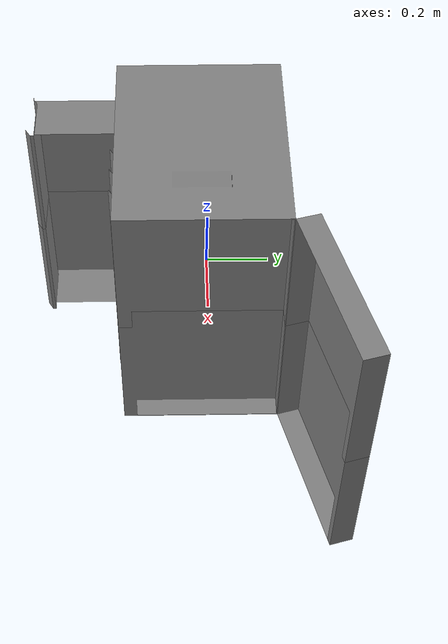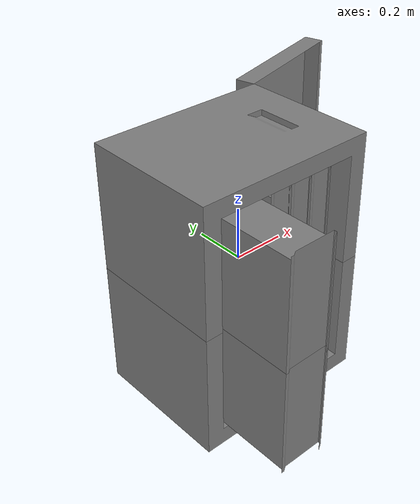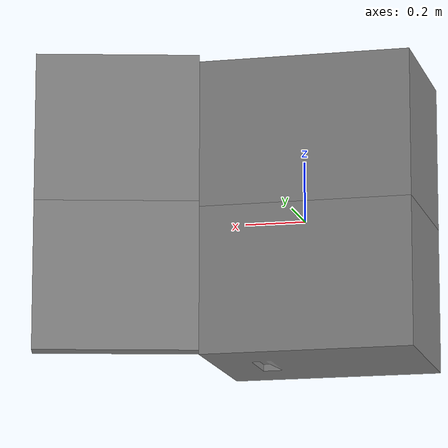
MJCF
<mujoco model="partnet_3317da004c4177a5f47e82e63eafd5bc-0">
    <!-- Compiler Options -->
    <compiler angle="radian" coordinate="local" />

    <!-- Simulation Options -->
    <option gravity="0 0 -9.81" />

    <!-- Asset Definitions -->
    <asset>
        <!-- Mesh Assets -->
        <mesh name="textured_objs_original_11" file="original-11.obj" />
        <mesh name="textured_objs_original_12" file="original-12.obj" />
        <mesh name="textured_objs_original_14" file="original-14.obj" />
        <mesh name="textured_objs_original_15" file="original-15.obj" />
        <mesh name="textured_objs_original_17" file="original-17.obj" />
        <mesh name="textured_objs_original_18" file="original-18.obj" />
        <mesh name="textured_objs_original_2" file="original-2.obj" />
        <mesh name="textured_objs_original_3" file="original-3.obj" />
        <mesh name="textured_objs_original_5" file="original-5.obj" />
        <mesh name="textured_objs_original_6" file="original-6.obj" />
        <mesh name="textured_objs_original_8" file="original-8.obj" />
        <mesh name="textured_objs_original_9" file="original-9.obj" />
    </asset>

    <!-- World Body -->
    <worldbody>
        <!-- Base Body -->
        <body name="base">
            <!-- Joint joint_2: fixed connecting base -> link_2 -->
            <body name="link_2" pos="0.0 0.0 0.0" euler="1.570796326794897 0.0 -1.570796326794897">
                <geom type="mesh" mesh="textured_objs_original_5" pos="0.0 0.0 0.0" />
                <geom type="mesh" mesh="textured_objs_original_6" pos="0.0 0.0 0.0" />
                <geom type="mesh" mesh="textured_objs_original_15" pos="0.0 0.0 0.0" />
                <geom type="mesh" mesh="textured_objs_original_11" pos="0.0 0.0 0.0" />
                <geom type="mesh" mesh="textured_objs_original_18" pos="0.0 0.0 0.0" />
                <geom type="mesh" mesh="textured_objs_original_17" pos="0.0 0.0 0.0" />
                <geom type="mesh" mesh="textured_objs_original_12" pos="0.0 0.0 0.0" />
                <geom type="mesh" mesh="textured_objs_original_14" pos="0.0 0.0 0.0" />
                <!-- Joint joint_0: revolute connecting link_2 -> link_0 -->
                <body name="link_0" pos="0.31660425872202214 0.29751199999999994 -0.24250700000000014" euler="0.0 0.0 0.0">
                    <joint name="joint_0" type="hinge" axis="-0.9659262867695628 0.0 0.0" range="-1.832595714594046 1.2915436464758039" />
                    <geom type="mesh" mesh="textured_objs_original_9" pos="-0.31660425872202214 -0.29751199999999994 0.24250700000000014" />
                    <geom type="mesh" mesh="textured_objs_original_8" pos="-0.31660425872202214 -0.29751199999999994 0.24250700000000014" />
                </body>
                <!-- Joint joint_1: prismatic connecting link_2 -> link_1 -->
                <body name="link_1" pos="-0.46159568235906356 -0.21526026863272418 0.284856" euler="0.0 0.0 0.0">
                    <joint name="joint_1" type="slide" axis="0.0 0.0 0.9999999999999999" range="-0.25 0.19199999999999995" />
                    <geom type="mesh" mesh="textured_objs_original_2" pos="0.46159568235906356 0.21526026863272418 -0.284856" />
                    <geom type="mesh" mesh="textured_objs_original_3" pos="0.46159568235906356 0.21526026863272418 -0.284856" />
                </body>
            </body>
        </body>
    </worldbody>
</mujoco>
